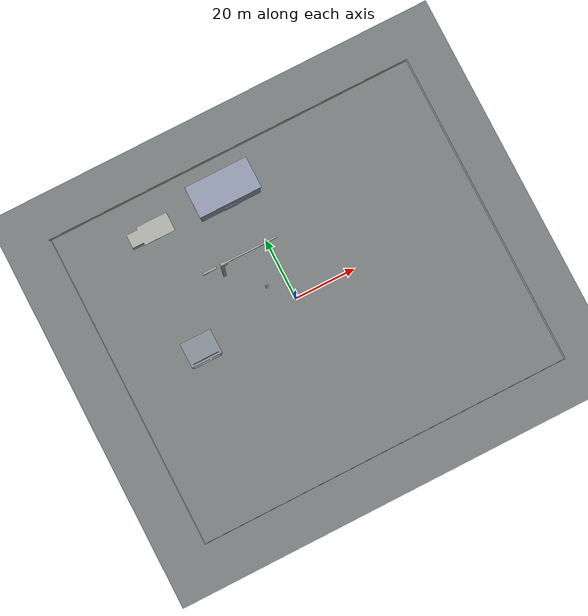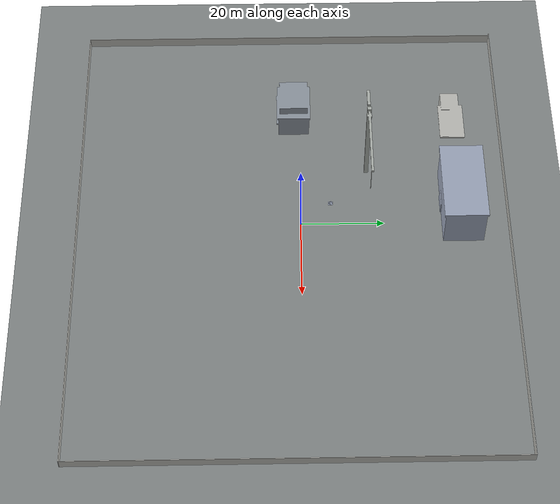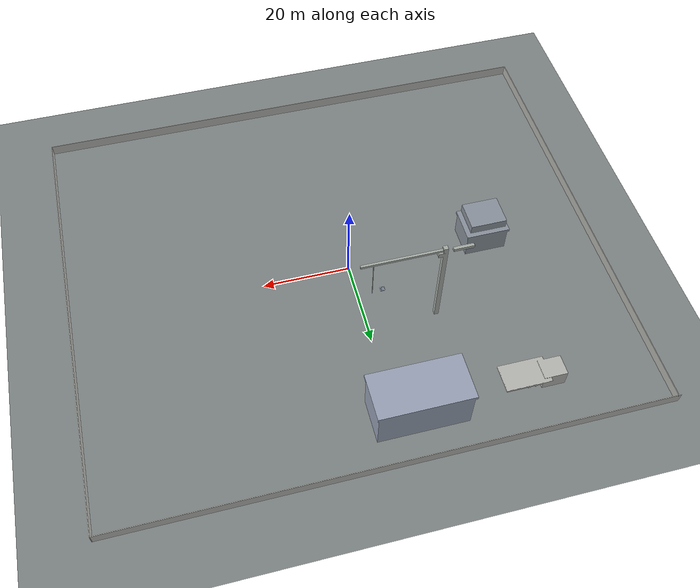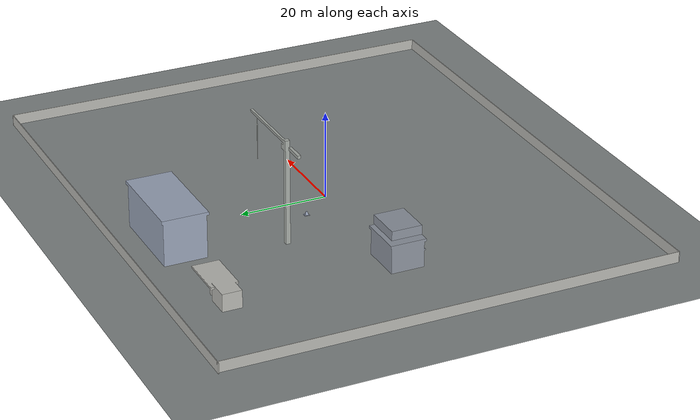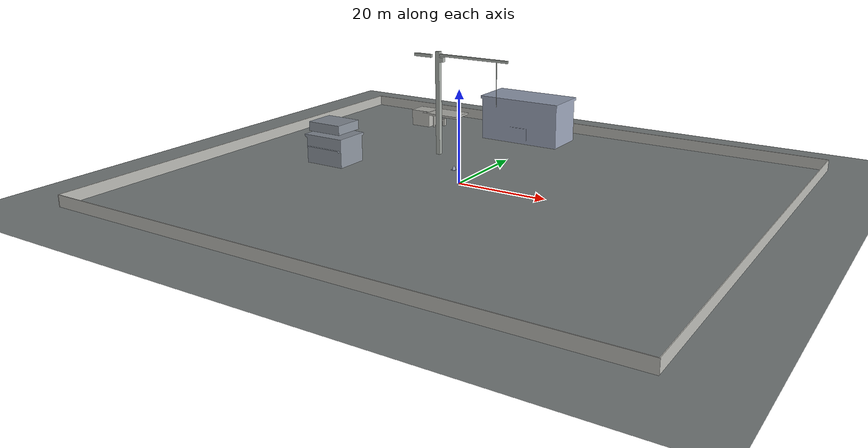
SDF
<sdf version="1.9">
 <world name="default">
  <model name="ground_plane">
   <static>true</static>
   <link name="link">
    <collision name="collision">
     <geometry><plane><normal>0 0 1</normal><size>160 140</size></plane></geometry>
     <surface><friction><ode><mu>1.0</mu><mu2>1.0</mu2></ode></friction></surface>
    </collision>
    <visual name="visual">
     <geometry><plane><normal>0 0 1</normal><size>160 140</size></plane></geometry>
     <material><diffuse>0.50 0.52 0.52 1</diffuse><ambient>0.50 0.52 0.52 1</ambient></material>
    </visual>
   </link>
  </model>
  <model name="Construction Cone">
   <static>true</static>
   <link name="link">
    <visual name="visual">
     <geometry>
      <mesh>
       <scale>10 10 10</scale>
       <uri>file:///home/k/clb_ws_jazzy/src/zebrat/gazebo_models/construction_cone/meshes/construction_cone.dae</uri>
      </mesh>
     </geometry>
     <material><diffuse>0.60 0.64 0.72 1</diffuse><ambient>0.60 0.64 0.72 1</ambient></material>
    </visual>
    <inertial>
     <inertia><ixx>1</ixx><ixy>0</ixy><ixz>0</ixz><iyy>1</iyy><iyz>0</iyz><izz>1</izz></inertia>
     <mass>1</mass>
    </inertial>
    <collision name="simple_collision">
     <pose>0 0 0.45 0 0 0</pose>
     <geometry><cylinder><radius>0.45</radius><length>0.9</length></cylinder></geometry>
     <surface><friction><ode><mu>1.0</mu><mu2>1.0</mu2></ode></friction></surface>
    </collision>
   </link>
   <pose>-6.06459 7.33164 0 0 -0 0</pose>
  </model>
  <model name="Untitled">
   <pose>2.62074 -1.81049 0 0 -0 0</pose>
   <link name="Wall_2">
    <collision name="Wall_2_Collision">
     <geometry><box><size>122.25 0.15 2.5</size></box></geometry>
     <pose>0 0 1.25 0 -0 0</pose>
    </collision>
    <visual name="Wall_2_Visual">
     <pose>0 0 1.25 0 -0 0</pose>
     <geometry><box><size>122.25 0.15 2.5</size></box></geometry>
     <material><ambient>1 1 1 1</ambient><diffuse>0.72 0.72 0.70 1</diffuse></material>
     <meta><layer>0</layer></meta>
    </visual>
    <pose>-4e-06 51.675 0 0 -0 0</pose>
   </link>
   <link name="Wall_4">
    <collision name="Wall_4_Collision">
     <geometry><box><size>103.5 0.15 2.5</size></box></geometry>
     <pose>0 0 1.25 0 -0 0</pose>
    </collision>
    <visual name="Wall_4_Visual">
     <pose>0 0 1.25 0 -0 0</pose>
     <geometry><box><size>103.5 0.15 2.5</size></box></geometry>
     <material><ambient>1 1 1 1</ambient><diffuse>0.72 0.72 0.70 1</diffuse></material>
     <meta><layer>0</layer></meta>
    </visual>
    <pose>61.05 2e-06 0 0 0 -1.5708</pose>
   </link>
   <link name="Wall_5">
    <collision name="Wall_5_Collision">
     <geometry><box><size>121.75 0.15 2.5</size></box></geometry>
     <pose>0 0 1.25 0 -0 0</pose>
    </collision>
    <visual name="Wall_5_Visual">
     <pose>0 0 1.25 0 -0 0</pose>
     <geometry><box><size>121.75 0.15 2.5</size></box></geometry>
     <material><ambient>1 1 1 1</ambient><diffuse>0.72 0.72 0.70 1</diffuse></material>
     <meta><layer>0</layer></meta>
    </visual>
    <pose>0.249996 -51.675 0 0 -0 3.14159</pose>
   </link>
   <link name="Wall_6">
    <collision name="Wall_6_Collision">
     <geometry><box><size>103.5 0.15 2.5</size></box></geometry>
     <pose>0 0 1.25 0 -0 0</pose>
    </collision>
    <visual name="Wall_6_Visual">
     <pose>0 0 1.25 0 -0 0</pose>
     <geometry><box><size>103.5 0.15 2.5</size></box></geometry>
     <material><ambient>1 1 1 1</ambient><diffuse>0.72 0.72 0.70 1</diffuse></material>
     <meta><layer>0</layer></meta>
    </visual>
    <pose>-60.55 2e-06 0 0 -0 1.5708</pose>
   </link>
   <static>true</static>
  </model>
  <model name="fire_station">
   <static>true</static>
   <link name="link">
    <collision name="main">
     <pose>0 -0.135 5 0 -0 0</pose>
     <geometry><box><size>19.98 9.68 10</size></box></geometry>
    </collision>
    <collision name="front_top">
     <pose>0 4.957 7 0 -0 0</pose>
     <geometry><box><size>20 0.515 6</size></box></geometry>
    </collision>
    <collision name="column_0">
     <pose>9.333 4.957 2 0 -0 0</pose>
     <geometry><box><size>1.315 0.515 4</size></box></geometry>
    </collision>
    <collision name="column_1">
     <pose>3.33 4.957 2 0 -0 0</pose>
     <geometry><box><size>2.63 0.515 4</size></box></geometry>
    </collision>
    <collision name="column_2">
     <pose>-3.33 4.957 2 0 -0 0</pose>
     <geometry><box><size>2.63 0.515 4</size></box></geometry>
    </collision>
    <collision name="column_3">
     <pose>-9.333 4.957 2 0 -0 0</pose>
     <geometry><box><size>1.315 0.515 4</size></box></geometry>
    </collision>
    <collision name="roof_back">
     <pose>0 -2.742 10.467 0.25 -0 0</pose>
     <geometry><box><size>21.47 6.12 0.28</size></box></geometry>
    </collision>
    <collision name="roof_front">
     <pose>0 3.12 10.467 -0.25 0 0</pose>
     <geometry><box><size>21.47 6.12 0.28</size></box></geometry>
    </collision>
    <collision name="roof_base">
     <pose>0 0.188 9.705 0 -0 0</pose>
     <geometry><box><size>21.47 11.86 0.28</size></box></geometry>
    </collision>
    <collision name="roof_filling_0">
     <pose>0 0.188 9.985 0 -0 0</pose>
     <geometry><box><size>21.47 9.53 0.28</size></box></geometry>
    </collision>
    <collision name="roof_filling_1">
     <pose>0 0.188 10.14 0 -0 0</pose>
     <geometry><box><size>21.47 8.41 0.28</size></box></geometry>
    </collision>
    <collision name="roof_filling_2">
     <pose>0 0.188 10.42 0 -0 0</pose>
     <geometry><box><size>21.47 6.25 0.28</size></box></geometry>
    </collision>
    <collision name="roof_filling_3">
     <pose>0 0.188 10.7 0 -0 0</pose>
     <geometry><box><size>21.47 4.05 0.28</size></box></geometry>
    </collision>
    <collision name="roof_filling_4">
     <pose>0 0.188 10.98 0 -0 0</pose>
     <geometry><box><size>21.47 1.83 0.28</size></box></geometry>
    </collision>
    <visual name="visual">
     <geometry>
      <mesh>
       <uri>file:///home/k/clb_ws_jazzy/src/zebrat/gazebo_models/fire_station/meshes/fire_station.dae</uri>
      </mesh>
     </geometry>
     <material><diffuse>0.60 0.64 0.72 1</diffuse><ambient>0.60 0.64 0.72 1</ambient></material>
    </visual>
   </link>
   <pose>-4.63112 38.7021 0 0 -0 0</pose>
  </model>
  <model name="Gas Station">
   <static>true</static>
   <link name="link">
    <visual name="visual">
     <geometry>
      <mesh>
       <uri>file:///home/k/clb_ws_jazzy/src/zebrat/gazebo_models/gas_station/meshes/gas_station.dae</uri>
      </mesh>
     </geometry>
     <material><diffuse>0.72 0.72 0.70 1</diffuse><ambient>0.72 0.72 0.70 1</ambient></material>
    </visual>
    <collision name="simple_collision">
     <pose>0 0 2.5 0 0 0</pose>
     <geometry><box><size>16.0 14.0 5.0</size></box></geometry>
     <surface><friction><ode><mu>1.0</mu><mu2>1.0</mu2></ode></friction></surface>
    </collision>
   </link>
   <pose>-30.6123 37.8547 0 0 -0 0</pose>
  </model>
  <model name="House 3">
   <static>true</static>
   <link name="link">
    <visual name="visual">
     <geometry>
      <mesh>
       <uri>file:///home/k/clb_ws_jazzy/src/zebrat/gazebo_models/house_3/meshes/house_3.dae</uri>
       <scale>1.5 1.5 1.5</scale>
      </mesh>
     </geometry>
     <material><diffuse>0.55 0.58 0.62 1</diffuse><ambient>0.55 0.58 0.62 1</ambient></material>
    </visual>
    <collision name="simple_collision">
     <pose>0 0 2.5 0 0 0</pose>
     <geometry><box><size>12.0 10.0 5.0</size></box></geometry>
     <surface><friction><ode><mu>1.0</mu><mu2>1.0</mu2></ode></friction></surface>
    </collision>
   </link>
   <pose>-32.4614 -1.19345 0 0 -0 0</pose>
  </model>
  <model name="tower_crane">
   <static>true</static>
   <link name="link">
    <visual name="visual">
     <geometry>
      <mesh>
       <uri>file:///home/k/clb_ws_jazzy/src/zebrat/gazebo_models/tower_crane/meshes/tower_crane.dae</uri>
      </mesh>
     </geometry>
     <material><diffuse>0.66 0.68 0.66 1</diffuse><ambient>0.66 0.68 0.66 1</ambient></material>
    </visual>
    <collision name="simple_collision">
     <pose>0 0 6.0 0 0 0</pose>
     <geometry><box><size>9.0 9.0 12.0</size></box></geometry>
     <surface><friction><ode><mu>1.0</mu><mu2>1.0</mu2></ode></friction></surface>
    </collision>
   </link>
   <pose>-15.9025 16.2976 0 0 -0 0</pose>
  </model>
 </world>
</sdf>
